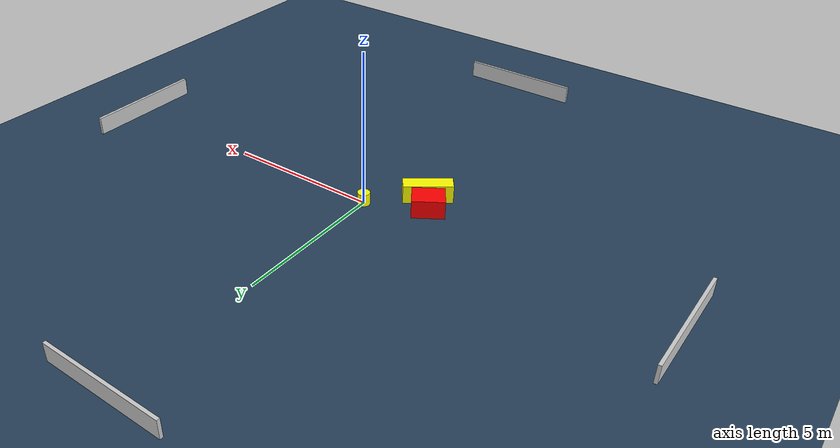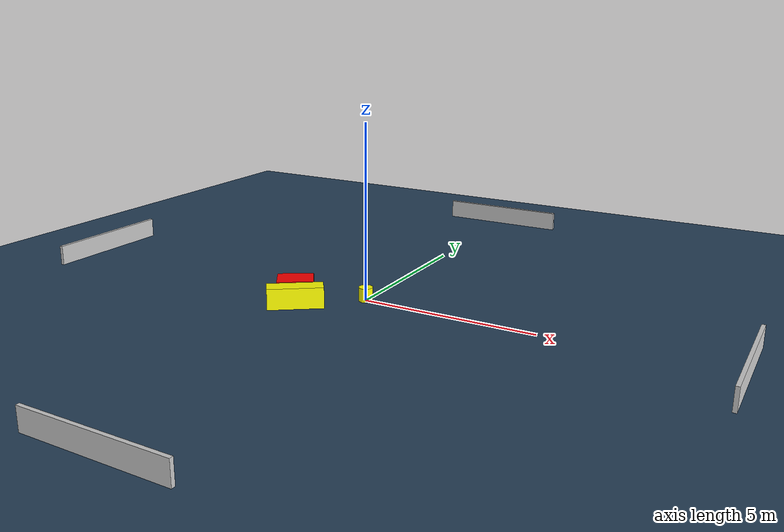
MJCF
<?xml version="1.0" ?>
<mujoco model="generated_environment">
  <option timestep="0.01" integrator="RK4" cone="elliptic"/>
  <default>
    <geom density="1"/>
  </default>
  <asset>
    <texture builtin="gradient" height="3072" name="skybox" rgb1="0.3 0.5 0.7" rgb2="0 0 0" type="skybox" width="512"/>
    <texture builtin="checker" height="300" name="groundplane" rgb1="0.2 0.3 0.4" rgb2="0.1 0.2 0.3" type="2d" width="300"/>
    <material name="groundplane" reflectance="0.2" texrepeat="5 5" texture="groundplane"/>
  </asset>
  <worldbody>
    <light dir="0 0 -1" directional="true" pos="0 0 1.5"/>
    <geom condim="3" friction="0.5 0.005 0.001" material="groundplane" name="floor" pos="0 0 0" size="0 0 0.05" type="plane"/>
    <body name="walls">
      <geom name="wall_1" condim="4" pos="-10.0 0.0 0.3" rgba="0.800000011920929 0.800000011920929 0.800000011920929 1.0" size="0.05 2.0 0.3" type="box"/>
      <geom name="wall_2" condim="4" pos="10.0 0.0 0.3" rgba="0.800000011920929 0.800000011920929 0.800000011920929 1.0" size="0.05 2.0 0.3" type="box"/>
      <geom name="wall_3" condim="4" pos="0.0 -10.0 0.3" rgba="0.800000011920929 0.800000011920929 0.800000011920929 1.0" size="2.0 0.05 0.3" type="box"/>
      <geom name="wall_4" condim="4" pos="0.0 10.0 0.3" rgba="0.800000011920929 0.800000011920929 0.800000011920929 1.0" size="2.0 0.05 0.3" type="box"/>
    </body>
    <body name="robot">
      <joint name="joint_x" type="slide" pos="0 0 0" axis="1 0 0"/>
      <joint name="joint_y" type="slide" pos="0 0 0" axis="0 1 0"/>
      <geom name="robot" type="cylinder" pos="0.0 0.0 0.2" size="0.2 0.2 0.0" mass="5.0" friction="1.0 0.005 0.0001" condim="4" rgba="1.0 1.0 0.0 1.0"/>
    </body>
    <body name="obstacle_1_movable">
      <geom name="obstacle_1_movable" condim="4" pos="-1.435836307458156 -1.3832284396541372 0.3" euler="0 0 36.39510115855076" friction="0.0 0.005 0.001" rgba="1.0 1.0 0.0 1.0" size="0.7801906356838733 0.2550173571223249 0.3" type="box" mass="0.1"/>
      <joint type="free"/>
    </body>
    <body name="obstacle_2_static">
      <geom name="obstacle_2_static" condim="4" pos="-1.8291849187283573 -0.8056309149193305 0.3" euler="0 0 212.98233569141695" friction="0.0 0.005 0.001" rgba="1.0 0.0 0.0 1.0" size="0.5127652213807943 0.39105896488690917 0.3" type="box"/>
    </body>
  </worldbody>
  <actuator>
    <motor name="actuator_x" joint="joint_x" gear="1" ctrlrange="-1 1"/>
    <motor name="actuator_y" joint="joint_y" gear="1" ctrlrange="-1 1"/>
  </actuator>
</mujoco>
